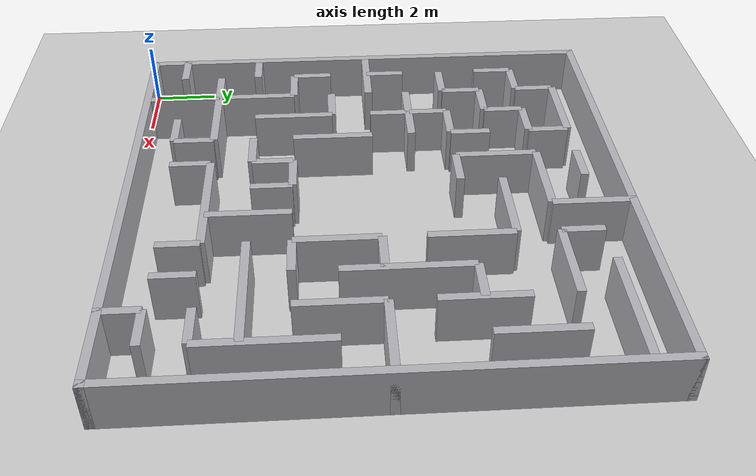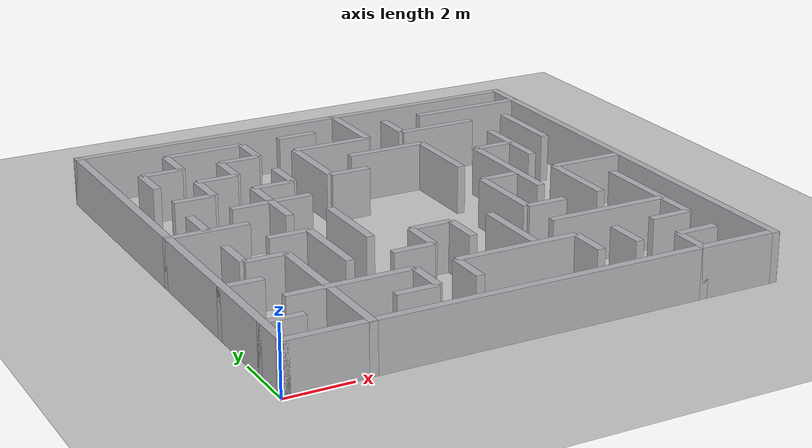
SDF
<?xml version="1.0" ?>
<sdf version="1.9">
  <world name="maze">

    <plugin filename="gz-sim-physics-system" name="gz::sim::systems::Physics">
    </plugin>
    <plugin filename="gz-sim-user-commands-system" name="gz::sim::systems::UserCommands">
    </plugin>
    <plugin filename="gz-sim-scene-broadcaster-system" name="gz::sim::systems::SceneBroadcaster">
    </plugin>
    <plugin filename="gz-sim-sensors-system" name="gz::sim::systems::Sensors">
      <render_engine>ogre2</render_engine>
    </plugin>
    <plugin filename="gz-sim-imu-system" name="gz::sim::systems::Imu">
    </plugin>

    <light type="directional" name="sun">
      <cast_shadows>true</cast_shadows>
      <pose>0 0 10 0 0 0</pose>
      <diffuse>0.8 0.8 0.8 1</diffuse>
      <specular>0.2 0.2 0.2 1</specular>
      <attenuation>
        <range>1000</range>
        <constant>0.9</constant>
        <linear>0.01</linear>
        <quadratic>0.001</quadratic>
      </attenuation>
      <direction>-0.5 0.1 -0.9</direction>
    </light>

    <model name="ground_plane">
      <static>true</static>
      <link name="link">
        <collision name="collision">
          <geometry>
            <plane>
              <normal>0 0 1</normal>
            </plane>
          </geometry>
        </collision>
        <visual name="visual">
          <geometry>
            <plane>
              <normal>0 0 1</normal>
              <size>20 20</size>
            </plane>
          </geometry>
          <material>
            <ambient>0.8 0.8 0.8 1</ambient>
            <diffuse>0.8 0.8 0.8 1</diffuse>
            <specular>0.8 0.8 0.8 1</specular>
          </material>
        </visual>
      </link>
    </model>

    <!-- MAZE WALLS                                                   -->
    <!-- 15 x 15 m closed square maze, generated on a 12x12 cell grid -->
    <!-- (1.25 m pitch). Wall thickness 0.25 m, wall height 1.5 m.    -->
    <!-- Corridor widths: 1.0 m for single-cell passages, up to       -->
    <!-- ~2.25 m for merged passages. Fully enclosed, no entrance -    -->
    <!-- the world origin (0,0) is the maze's southwest corner, so    -->
    <!-- the whole maze spans x: 0..15, y: 0..15.                     -->
    <!-- A 3 x 3 m opening is carved at the exact center (x: 6..9,    -->
    <!-- y: 6..9) as the robot spawn area, with no walls touching it. -->
    <!-- Spawn the robot at (7.5, 7.5, z) facing up (+y) to start     -->
    <!-- centered in that open square.                                -->
    <model name="maze_walls">
      <static>true</static>
      <link name="walls_link">
      <collision name="wall_0_collision">
        <pose>7.5000 0.1250 0.750 0 0 0</pose>
        <geometry>
          <box>
            <size>15.0000 0.2500 1.5</size>
          </box>
        </geometry>
      </collision>
      <visual name="wall_0_visual">
        <pose>7.5000 0.1250 0.750 0 0 0</pose>
        <geometry>
          <box>
            <size>15.0000 0.2500 1.5</size>
          </box>
        </geometry>
        <material>
          <ambient>0.7 0.7 0.72 1</ambient>
          <diffuse>0.7 0.7 0.72 1</diffuse>
          <specular>0.3 0.3 0.3 1</specular>
        </material>
      </visual>
      <collision name="wall_1_collision">
        <pose>7.5000 14.8750 0.750 0 0 0</pose>
        <geometry>
          <box>
            <size>15.0000 0.2500 1.5</size>
          </box>
        </geometry>
      </collision>
      <visual name="wall_1_visual">
        <pose>7.5000 14.8750 0.750 0 0 0</pose>
        <geometry>
          <box>
            <size>15.0000 0.2500 1.5</size>
          </box>
        </geometry>
        <material>
          <ambient>0.7 0.7 0.72 1</ambient>
          <diffuse>0.7 0.7 0.72 1</diffuse>
          <specular>0.3 0.3 0.3 1</specular>
        </material>
      </visual>
      <collision name="wall_2_collision">
        <pose>0.1250 7.5000 0.750 0 0 0</pose>
        <geometry>
          <box>
            <size>0.2500 15.0000 1.5</size>
          </box>
        </geometry>
      </collision>
      <visual name="wall_2_visual">
        <pose>0.1250 7.5000 0.750 0 0 0</pose>
        <geometry>
          <box>
            <size>0.2500 15.0000 1.5</size>
          </box>
        </geometry>
        <material>
          <ambient>0.7 0.7 0.72 1</ambient>
          <diffuse>0.7 0.7 0.72 1</diffuse>
          <specular>0.3 0.3 0.3 1</specular>
        </material>
      </visual>
      <collision name="wall_3_collision">
        <pose>14.8750 7.5000 0.750 0 0 0</pose>
        <geometry>
          <box>
            <size>0.2500 15.0000 1.5</size>
          </box>
        </geometry>
      </collision>
      <visual name="wall_3_visual">
        <pose>14.8750 7.5000 0.750 0 0 0</pose>
        <geometry>
          <box>
            <size>0.2500 15.0000 1.5</size>
          </box>
        </geometry>
        <material>
          <ambient>0.7 0.7 0.72 1</ambient>
          <diffuse>0.7 0.7 0.72 1</diffuse>
          <specular>0.3 0.3 0.3 1</specular>
        </material>
      </visual>
      <collision name="wall_4_collision">
        <pose>1.2500 5.6250 0.750 0 0 0</pose>
        <geometry>
          <box>
            <size>0.2500 1.2500 1.5</size>
          </box>
        </geometry>
      </collision>
      <visual name="wall_4_visual">
        <pose>1.2500 5.6250 0.750 0 0 0</pose>
        <geometry>
          <box>
            <size>0.2500 1.2500 1.5</size>
          </box>
        </geometry>
        <material>
          <ambient>0.7 0.7 0.72 1</ambient>
          <diffuse>0.7 0.7 0.72 1</diffuse>
          <specular>0.3 0.3 0.3 1</specular>
        </material>
      </visual>
      <collision name="wall_5_collision">
        <pose>1.2500 8.1250 0.750 0 0 0</pose>
        <geometry>
          <box>
            <size>0.2500 1.2500 1.5</size>
          </box>
        </geometry>
      </collision>
      <visual name="wall_5_visual">
        <pose>1.2500 8.1250 0.750 0 0 0</pose>
        <geometry>
          <box>
            <size>0.2500 1.2500 1.5</size>
          </box>
        </geometry>
        <material>
          <ambient>0.7 0.7 0.72 1</ambient>
          <diffuse>0.7 0.7 0.72 1</diffuse>
          <specular>0.3 0.3 0.3 1</specular>
        </material>
      </visual>
      <collision name="wall_6_collision">
        <pose>1.2500 11.8750 0.750 0 0 0</pose>
        <geometry>
          <box>
            <size>0.2500 1.2500 1.5</size>
          </box>
        </geometry>
      </collision>
      <visual name="wall_6_visual">
        <pose>1.2500 11.8750 0.750 0 0 0</pose>
        <geometry>
          <box>
            <size>0.2500 1.2500 1.5</size>
          </box>
        </geometry>
        <material>
          <ambient>0.7 0.7 0.72 1</ambient>
          <diffuse>0.7 0.7 0.72 1</diffuse>
          <specular>0.3 0.3 0.3 1</specular>
        </material>
      </visual>
      <collision name="wall_7_collision">
        <pose>2.5000 2.5000 0.750 0 0 0</pose>
        <geometry>
          <box>
            <size>0.2500 5.0000 1.5</size>
          </box>
        </geometry>
      </collision>
      <visual name="wall_7_visual">
        <pose>2.5000 2.5000 0.750 0 0 0</pose>
        <geometry>
          <box>
            <size>0.2500 5.0000 1.5</size>
          </box>
        </geometry>
        <material>
          <ambient>0.7 0.7 0.72 1</ambient>
          <diffuse>0.7 0.7 0.72 1</diffuse>
          <specular>0.3 0.3 0.3 1</specular>
        </material>
      </visual>
      <collision name="wall_8_collision">
        <pose>2.5000 10.6250 0.750 0 0 0</pose>
        <geometry>
          <box>
            <size>0.2500 1.2500 1.5</size>
          </box>
        </geometry>
      </collision>
      <visual name="wall_8_visual">
        <pose>2.5000 10.6250 0.750 0 0 0</pose>
        <geometry>
          <box>
            <size>0.2500 1.2500 1.5</size>
          </box>
        </geometry>
        <material>
          <ambient>0.7 0.7 0.72 1</ambient>
          <diffuse>0.7 0.7 0.72 1</diffuse>
          <specular>0.3 0.3 0.3 1</specular>
        </material>
      </visual>
      <collision name="wall_9_collision">
        <pose>2.5000 13.1250 0.750 0 0 0</pose>
        <geometry>
          <box>
            <size>0.2500 1.2500 1.5</size>
          </box>
        </geometry>
      </collision>
      <visual name="wall_9_visual">
        <pose>2.5000 13.1250 0.750 0 0 0</pose>
        <geometry>
          <box>
            <size>0.2500 1.2500 1.5</size>
          </box>
        </geometry>
        <material>
          <ambient>0.7 0.7 0.72 1</ambient>
          <diffuse>0.7 0.7 0.72 1</diffuse>
          <specular>0.3 0.3 0.3 1</specular>
        </material>
      </visual>
      <collision name="wall_10_collision">
        <pose>3.7500 5.0000 0.750 0 0 0</pose>
        <geometry>
          <box>
            <size>0.2500 2.5000 1.5</size>
          </box>
        </geometry>
      </collision>
      <visual name="wall_10_visual">
        <pose>3.7500 5.0000 0.750 0 0 0</pose>
        <geometry>
          <box>
            <size>0.2500 2.5000 1.5</size>
          </box>
        </geometry>
        <material>
          <ambient>0.7 0.7 0.72 1</ambient>
          <diffuse>0.7 0.7 0.72 1</diffuse>
          <specular>0.3 0.3 0.3 1</specular>
        </material>
      </visual>
      <collision name="wall_11_collision">
        <pose>3.7500 8.7500 0.750 0 0 0</pose>
        <geometry>
          <box>
            <size>0.2500 2.5000 1.5</size>
          </box>
        </geometry>
      </collision>
      <visual name="wall_11_visual">
        <pose>3.7500 8.7500 0.750 0 0 0</pose>
        <geometry>
          <box>
            <size>0.2500 2.5000 1.5</size>
          </box>
        </geometry>
        <material>
          <ambient>0.7 0.7 0.72 1</ambient>
          <diffuse>0.7 0.7 0.72 1</diffuse>
          <specular>0.3 0.3 0.3 1</specular>
        </material>
      </visual>
      <collision name="wall_12_collision">
        <pose>3.7500 11.8750 0.750 0 0 0</pose>
        <geometry>
          <box>
            <size>0.2500 1.2500 1.5</size>
          </box>
        </geometry>
      </collision>
      <visual name="wall_12_visual">
        <pose>3.7500 11.8750 0.750 0 0 0</pose>
        <geometry>
          <box>
            <size>0.2500 1.2500 1.5</size>
          </box>
        </geometry>
        <material>
          <ambient>0.7 0.7 0.72 1</ambient>
          <diffuse>0.7 0.7 0.72 1</diffuse>
          <specular>0.3 0.3 0.3 1</specular>
        </material>
      </visual>
      <collision name="wall_13_collision">
        <pose>5.0000 1.8750 0.750 0 0 0</pose>
        <geometry>
          <box>
            <size>0.2500 1.2500 1.5</size>
          </box>
        </geometry>
      </collision>
      <visual name="wall_13_visual">
        <pose>5.0000 1.8750 0.750 0 0 0</pose>
        <geometry>
          <box>
            <size>0.2500 1.2500 1.5</size>
          </box>
        </geometry>
        <material>
          <ambient>0.7 0.7 0.72 1</ambient>
          <diffuse>0.7 0.7 0.72 1</diffuse>
          <specular>0.3 0.3 0.3 1</specular>
        </material>
      </visual>
      <collision name="wall_14_collision">
        <pose>5.0000 6.2500 0.750 0 0 0</pose>
        <geometry>
          <box>
            <size>0.2500 2.5000 1.5</size>
          </box>
        </geometry>
      </collision>
      <visual name="wall_14_visual">
        <pose>5.0000 6.2500 0.750 0 0 0</pose>
        <geometry>
          <box>
            <size>0.2500 2.5000 1.5</size>
          </box>
        </geometry>
        <material>
          <ambient>0.7 0.7 0.72 1</ambient>
          <diffuse>0.7 0.7 0.72 1</diffuse>
          <specular>0.3 0.3 0.3 1</specular>
        </material>
      </visual>
      <collision name="wall_15_collision">
        <pose>5.0000 10.6250 0.750 0 0 0</pose>
        <geometry>
          <box>
            <size>0.2500 1.2500 1.5</size>
          </box>
        </geometry>
      </collision>
      <visual name="wall_15_visual">
        <pose>5.0000 10.6250 0.750 0 0 0</pose>
        <geometry>
          <box>
            <size>0.2500 1.2500 1.5</size>
          </box>
        </geometry>
        <material>
          <ambient>0.7 0.7 0.72 1</ambient>
          <diffuse>0.7 0.7 0.72 1</diffuse>
          <specular>0.3 0.3 0.3 1</specular>
        </material>
      </visual>
      <collision name="wall_16_collision">
        <pose>5.0000 13.1250 0.750 0 0 0</pose>
        <geometry>
          <box>
            <size>0.2500 1.2500 1.5</size>
          </box>
        </geometry>
      </collision>
      <visual name="wall_16_visual">
        <pose>5.0000 13.1250 0.750 0 0 0</pose>
        <geometry>
          <box>
            <size>0.2500 1.2500 1.5</size>
          </box>
        </geometry>
        <material>
          <ambient>0.7 0.7 0.72 1</ambient>
          <diffuse>0.7 0.7 0.72 1</diffuse>
          <specular>0.3 0.3 0.3 1</specular>
        </material>
      </visual>
      <collision name="wall_17_collision">
        <pose>6.2500 1.8750 0.750 0 0 0</pose>
        <geometry>
          <box>
            <size>0.2500 1.2500 1.5</size>
          </box>
        </geometry>
      </collision>
      <visual name="wall_17_visual">
        <pose>6.2500 1.8750 0.750 0 0 0</pose>
        <geometry>
          <box>
            <size>0.2500 1.2500 1.5</size>
          </box>
        </geometry>
        <material>
          <ambient>0.7 0.7 0.72 1</ambient>
          <diffuse>0.7 0.7 0.72 1</diffuse>
          <specular>0.3 0.3 0.3 1</specular>
        </material>
      </visual>
      <collision name="wall_18_collision">
        <pose>6.2500 4.3750 0.750 0 0 0</pose>
        <geometry>
          <box>
            <size>0.2500 1.2500 1.5</size>
          </box>
        </geometry>
      </collision>
      <visual name="wall_18_visual">
        <pose>6.2500 4.3750 0.750 0 0 0</pose>
        <geometry>
          <box>
            <size>0.2500 1.2500 1.5</size>
          </box>
        </geometry>
        <material>
          <ambient>0.7 0.7 0.72 1</ambient>
          <diffuse>0.7 0.7 0.72 1</diffuse>
          <specular>0.3 0.3 0.3 1</specular>
        </material>
      </visual>
      <collision name="wall_19_collision">
        <pose>6.2500 11.2500 0.750 0 0 0</pose>
        <geometry>
          <box>
            <size>0.2500 2.5000 1.5</size>
          </box>
        </geometry>
      </collision>
      <visual name="wall_19_visual">
        <pose>6.2500 11.2500 0.750 0 0 0</pose>
        <geometry>
          <box>
            <size>0.2500 2.5000 1.5</size>
          </box>
        </geometry>
        <material>
          <ambient>0.7 0.7 0.72 1</ambient>
          <diffuse>0.7 0.7 0.72 1</diffuse>
          <specular>0.3 0.3 0.3 1</specular>
        </material>
      </visual>
      <collision name="wall_20_collision">
        <pose>7.5000 4.3750 0.750 0 0 0</pose>
        <geometry>
          <box>
            <size>0.2500 1.2500 1.5</size>
          </box>
        </geometry>
      </collision>
      <visual name="wall_20_visual">
        <pose>7.5000 4.3750 0.750 0 0 0</pose>
        <geometry>
          <box>
            <size>0.2500 1.2500 1.5</size>
          </box>
        </geometry>
        <material>
          <ambient>0.7 0.7 0.72 1</ambient>
          <diffuse>0.7 0.7 0.72 1</diffuse>
          <specular>0.3 0.3 0.3 1</specular>
        </material>
      </visual>
      <collision name="wall_21_collision">
        <pose>8.7500 3.7500 0.750 0 0 0</pose>
        <geometry>
          <box>
            <size>0.2500 2.5000 1.5</size>
          </box>
        </geometry>
      </collision>
      <visual name="wall_21_visual">
        <pose>8.7500 3.7500 0.750 0 0 0</pose>
        <geometry>
          <box>
            <size>0.2500 2.5000 1.5</size>
          </box>
        </geometry>
        <material>
          <ambient>0.7 0.7 0.72 1</ambient>
          <diffuse>0.7 0.7 0.72 1</diffuse>
          <specular>0.3 0.3 0.3 1</specular>
        </material>
      </visual>
      <collision name="wall_22_collision">
        <pose>8.7500 13.7500 0.750 0 0 0</pose>
        <geometry>
          <box>
            <size>0.2500 2.5000 1.5</size>
          </box>
        </geometry>
      </collision>
      <visual name="wall_22_visual">
        <pose>8.7500 13.7500 0.750 0 0 0</pose>
        <geometry>
          <box>
            <size>0.2500 2.5000 1.5</size>
          </box>
        </geometry>
        <material>
          <ambient>0.7 0.7 0.72 1</ambient>
          <diffuse>0.7 0.7 0.72 1</diffuse>
          <specular>0.3 0.3 0.3 1</specular>
        </material>
      </visual>
      <collision name="wall_23_collision">
        <pose>10.0000 1.8750 0.750 0 0 0</pose>
        <geometry>
          <box>
            <size>0.2500 1.2500 1.5</size>
          </box>
        </geometry>
      </collision>
      <visual name="wall_23_visual">
        <pose>10.0000 1.8750 0.750 0 0 0</pose>
        <geometry>
          <box>
            <size>0.2500 1.2500 1.5</size>
          </box>
        </geometry>
        <material>
          <ambient>0.7 0.7 0.72 1</ambient>
          <diffuse>0.7 0.7 0.72 1</diffuse>
          <specular>0.3 0.3 0.3 1</specular>
        </material>
      </visual>
      <collision name="wall_24_collision">
        <pose>10.0000 6.2500 0.750 0 0 0</pose>
        <geometry>
          <box>
            <size>0.2500 2.5000 1.5</size>
          </box>
        </geometry>
      </collision>
      <visual name="wall_24_visual">
        <pose>10.0000 6.2500 0.750 0 0 0</pose>
        <geometry>
          <box>
            <size>0.2500 2.5000 1.5</size>
          </box>
        </geometry>
        <material>
          <ambient>0.7 0.7 0.72 1</ambient>
          <diffuse>0.7 0.7 0.72 1</diffuse>
          <specular>0.3 0.3 0.3 1</specular>
        </material>
      </visual>
      <collision name="wall_25_collision">
        <pose>10.0000 10.0000 0.750 0 0 0</pose>
        <geometry>
          <box>
            <size>0.2500 2.5000 1.5</size>
          </box>
        </geometry>
      </collision>
      <visual name="wall_25_visual">
        <pose>10.0000 10.0000 0.750 0 0 0</pose>
        <geometry>
          <box>
            <size>0.2500 2.5000 1.5</size>
          </box>
        </geometry>
        <material>
          <ambient>0.7 0.7 0.72 1</ambient>
          <diffuse>0.7 0.7 0.72 1</diffuse>
          <specular>0.3 0.3 0.3 1</specular>
        </material>
      </visual>
      <collision name="wall_26_collision">
        <pose>10.0000 13.1250 0.750 0 0 0</pose>
        <geometry>
          <box>
            <size>0.2500 1.2500 1.5</size>
          </box>
        </geometry>
      </collision>
      <visual name="wall_26_visual">
        <pose>10.0000 13.1250 0.750 0 0 0</pose>
        <geometry>
          <box>
            <size>0.2500 1.2500 1.5</size>
          </box>
        </geometry>
        <material>
          <ambient>0.7 0.7 0.72 1</ambient>
          <diffuse>0.7 0.7 0.72 1</diffuse>
          <specular>0.3 0.3 0.3 1</specular>
        </material>
      </visual>
      <collision name="wall_27_collision">
        <pose>11.2500 1.8750 0.750 0 0 0</pose>
        <geometry>
          <box>
            <size>0.2500 1.2500 1.5</size>
          </box>
        </geometry>
      </collision>
      <visual name="wall_27_visual">
        <pose>11.2500 1.8750 0.750 0 0 0</pose>
        <geometry>
          <box>
            <size>0.2500 1.2500 1.5</size>
          </box>
        </geometry>
        <material>
          <ambient>0.7 0.7 0.72 1</ambient>
          <diffuse>0.7 0.7 0.72 1</diffuse>
          <specular>0.3 0.3 0.3 1</specular>
        </material>
      </visual>
      <collision name="wall_28_collision">
        <pose>11.2500 8.1250 0.750 0 0 0</pose>
        <geometry>
          <box>
            <size>0.2500 3.7500 1.5</size>
          </box>
        </geometry>
      </collision>
      <visual name="wall_28_visual">
        <pose>11.2500 8.1250 0.750 0 0 0</pose>
        <geometry>
          <box>
            <size>0.2500 3.7500 1.5</size>
          </box>
        </geometry>
        <material>
          <ambient>0.7 0.7 0.72 1</ambient>
          <diffuse>0.7 0.7 0.72 1</diffuse>
          <specular>0.3 0.3 0.3 1</specular>
        </material>
      </visual>
      <collision name="wall_29_collision">
        <pose>12.5000 0.6250 0.750 0 0 0</pose>
        <geometry>
          <box>
            <size>0.2500 1.2500 1.5</size>
          </box>
        </geometry>
      </collision>
      <visual name="wall_29_visual">
        <pose>12.5000 0.6250 0.750 0 0 0</pose>
        <geometry>
          <box>
            <size>0.2500 1.2500 1.5</size>
          </box>
        </geometry>
        <material>
          <ambient>0.7 0.7 0.72 1</ambient>
          <diffuse>0.7 0.7 0.72 1</diffuse>
          <specular>0.3 0.3 0.3 1</specular>
        </material>
      </visual>
      <collision name="wall_30_collision">
        <pose>12.5000 6.2500 0.750 0 0 0</pose>
        <geometry>
          <box>
            <size>0.2500 2.5000 1.5</size>
          </box>
        </geometry>
      </collision>
      <visual name="wall_30_visual">
        <pose>12.5000 6.2500 0.750 0 0 0</pose>
        <geometry>
          <box>
            <size>0.2500 2.5000 1.5</size>
          </box>
        </geometry>
        <material>
          <ambient>0.7 0.7 0.72 1</ambient>
          <diffuse>0.7 0.7 0.72 1</diffuse>
          <specular>0.3 0.3 0.3 1</specular>
        </material>
      </visual>
      <collision name="wall_31_collision">
        <pose>12.5000 10.0000 0.750 0 0 0</pose>
        <geometry>
          <box>
            <size>0.2500 2.5000 1.5</size>
          </box>
        </geometry>
      </collision>
      <visual name="wall_31_visual">
        <pose>12.5000 10.0000 0.750 0 0 0</pose>
        <geometry>
          <box>
            <size>0.2500 2.5000 1.5</size>
          </box>
        </geometry>
        <material>
          <ambient>0.7 0.7 0.72 1</ambient>
          <diffuse>0.7 0.7 0.72 1</diffuse>
          <specular>0.3 0.3 0.3 1</specular>
        </material>
      </visual>
      <collision name="wall_32_collision">
        <pose>13.7500 4.3750 0.750 0 0 0</pose>
        <geometry>
          <box>
            <size>0.2500 3.7500 1.5</size>
          </box>
        </geometry>
      </collision>
      <visual name="wall_32_visual">
        <pose>13.7500 4.3750 0.750 0 0 0</pose>
        <geometry>
          <box>
            <size>0.2500 3.7500 1.5</size>
          </box>
        </geometry>
        <material>
          <ambient>0.7 0.7 0.72 1</ambient>
          <diffuse>0.7 0.7 0.72 1</diffuse>
          <specular>0.3 0.3 0.3 1</specular>
        </material>
      </visual>
      <collision name="wall_33_collision">
        <pose>13.7500 11.2500 0.750 0 0 0</pose>
        <geometry>
          <box>
            <size>0.2500 2.5000 1.5</size>
          </box>
        </geometry>
      </collision>
      <visual name="wall_33_visual">
        <pose>13.7500 11.2500 0.750 0 0 0</pose>
        <geometry>
          <box>
            <size>0.2500 2.5000 1.5</size>
          </box>
        </geometry>
        <material>
          <ambient>0.7 0.7 0.72 1</ambient>
          <diffuse>0.7 0.7 0.72 1</diffuse>
          <specular>0.3 0.3 0.3 1</specular>
        </material>
      </visual>
      <collision name="wall_34_collision">
        <pose>0.6250 1.2500 0.750 0 0 0</pose>
        <geometry>
          <box>
            <size>1.2500 0.2500 1.5</size>
          </box>
        </geometry>
      </collision>
      <visual name="wall_34_visual">
        <pose>0.6250 1.2500 0.750 0 0 0</pose>
        <geometry>
          <box>
            <size>1.2500 0.2500 1.5</size>
          </box>
        </geometry>
        <material>
          <ambient>0.7 0.7 0.72 1</ambient>
          <diffuse>0.7 0.7 0.72 1</diffuse>
          <specular>0.3 0.3 0.3 1</specular>
        </material>
      </visual>
      <collision name="wall_35_collision">
        <pose>4.3750 1.2500 0.750 0 0 0</pose>
        <geometry>
          <box>
            <size>1.2500 0.2500 1.5</size>
          </box>
        </geometry>
      </collision>
      <visual name="wall_35_visual">
        <pose>4.3750 1.2500 0.750 0 0 0</pose>
        <geometry>
          <box>
            <size>1.2500 0.2500 1.5</size>
          </box>
        </geometry>
        <material>
          <ambient>0.7 0.7 0.72 1</ambient>
          <diffuse>0.7 0.7 0.72 1</diffuse>
          <specular>0.3 0.3 0.3 1</specular>
        </material>
      </visual>
      <collision name="wall_36_collision">
        <pose>13.1250 1.2500 0.750 0 0 0</pose>
        <geometry>
          <box>
            <size>1.2500 0.2500 1.5</size>
          </box>
        </geometry>
      </collision>
      <visual name="wall_36_visual">
        <pose>13.1250 1.2500 0.750 0 0 0</pose>
        <geometry>
          <box>
            <size>1.2500 0.2500 1.5</size>
          </box>
        </geometry>
        <material>
          <ambient>0.7 0.7 0.72 1</ambient>
          <diffuse>0.7 0.7 0.72 1</diffuse>
          <specular>0.3 0.3 0.3 1</specular>
        </material>
      </visual>
      <collision name="wall_37_collision">
        <pose>0.6250 3.7500 0.750 0 0 0</pose>
        <geometry>
          <box>
            <size>1.2500 0.2500 1.5</size>
          </box>
        </geometry>
      </collision>
      <visual name="wall_37_visual">
        <pose>0.6250 3.7500 0.750 0 0 0</pose>
        <geometry>
          <box>
            <size>1.2500 0.2500 1.5</size>
          </box>
        </geometry>
        <material>
          <ambient>0.7 0.7 0.72 1</ambient>
          <diffuse>0.7 0.7 0.72 1</diffuse>
          <specular>0.3 0.3 0.3 1</specular>
        </material>
      </visual>
      <collision name="wall_38_collision">
        <pose>5.6250 3.7500 0.750 0 0 0</pose>
        <geometry>
          <box>
            <size>1.2500 0.2500 1.5</size>
          </box>
        </geometry>
      </collision>
      <visual name="wall_38_visual">
        <pose>5.6250 3.7500 0.750 0 0 0</pose>
        <geometry>
          <box>
            <size>1.2500 0.2500 1.5</size>
          </box>
        </geometry>
        <material>
          <ambient>0.7 0.7 0.72 1</ambient>
          <diffuse>0.7 0.7 0.72 1</diffuse>
          <specular>0.3 0.3 0.3 1</specular>
        </material>
      </visual>
      <collision name="wall_39_collision">
        <pose>11.8750 3.7500 0.750 0 0 0</pose>
        <geometry>
          <box>
            <size>3.7500 0.2500 1.5</size>
          </box>
        </geometry>
      </collision>
      <visual name="wall_39_visual">
        <pose>11.8750 3.7500 0.750 0 0 0</pose>
        <geometry>
          <box>
            <size>3.7500 0.2500 1.5</size>
          </box>
        </geometry>
        <material>
          <ambient>0.7 0.7 0.72 1</ambient>
          <diffuse>0.7 0.7 0.72 1</diffuse>
          <specular>0.3 0.3 0.3 1</specular>
        </material>
      </visual>
      <collision name="wall_40_collision">
        <pose>1.2500 7.5000 0.750 0 0 0</pose>
        <geometry>
          <box>
            <size>2.5000 0.2500 1.5</size>
          </box>
        </geometry>
      </collision>
      <visual name="wall_40_visual">
        <pose>1.2500 7.5000 0.750 0 0 0</pose>
        <geometry>
          <box>
            <size>2.5000 0.2500 1.5</size>
          </box>
        </geometry>
        <material>
          <ambient>0.7 0.7 0.72 1</ambient>
          <diffuse>0.7 0.7 0.72 1</diffuse>
          <specular>0.3 0.3 0.3 1</specular>
        </material>
      </visual>
      <collision name="wall_41_collision">
        <pose>10.6250 7.5000 0.750 0 0 0</pose>
        <geometry>
          <box>
            <size>1.2500 0.2500 1.5</size>
          </box>
        </geometry>
      </collision>
      <visual name="wall_41_visual">
        <pose>10.6250 7.5000 0.750 0 0 0</pose>
        <geometry>
          <box>
            <size>1.2500 0.2500 1.5</size>
          </box>
        </geometry>
        <material>
          <ambient>0.7 0.7 0.72 1</ambient>
          <diffuse>0.7 0.7 0.72 1</diffuse>
          <specular>0.3 0.3 0.3 1</specular>
        </material>
      </visual>
      <collision name="wall_42_collision">
        <pose>13.7500 7.5000 0.750 0 0 0</pose>
        <geometry>
          <box>
            <size>2.5000 0.2500 1.5</size>
          </box>
        </geometry>
      </collision>
      <visual name="wall_42_visual">
        <pose>13.7500 7.5000 0.750 0 0 0</pose>
        <geometry>
          <box>
            <size>2.5000 0.2500 1.5</size>
          </box>
        </geometry>
        <material>
          <ambient>0.7 0.7 0.72 1</ambient>
          <diffuse>0.7 0.7 0.72 1</diffuse>
          <specular>0.3 0.3 0.3 1</specular>
        </material>
      </visual>
      <collision name="wall_43_collision">
        <pose>3.1250 2.5000 0.750 0 0 0</pose>
        <geometry>
          <box>
            <size>3.7500 0.2500 1.5</size>
          </box>
        </geometry>
      </collision>
      <visual name="wall_43_visual">
        <pose>3.1250 2.5000 0.750 0 0 0</pose>
        <geometry>
          <box>
            <size>3.7500 0.2500 1.5</size>
          </box>
        </geometry>
        <material>
          <ambient>0.7 0.7 0.72 1</ambient>
          <diffuse>0.7 0.7 0.72 1</diffuse>
          <specular>0.3 0.3 0.3 1</specular>
        </material>
      </visual>
      <collision name="wall_44_collision">
        <pose>8.1250 2.5000 0.750 0 0 0</pose>
        <geometry>
          <box>
            <size>3.7500 0.2500 1.5</size>
          </box>
        </geometry>
      </collision>
      <visual name="wall_44_visual">
        <pose>8.1250 2.5000 0.750 0 0 0</pose>
        <geometry>
          <box>
            <size>3.7500 0.2500 1.5</size>
          </box>
        </geometry>
        <material>
          <ambient>0.7 0.7 0.72 1</ambient>
          <diffuse>0.7 0.7 0.72 1</diffuse>
          <specular>0.3 0.3 0.3 1</specular>
        </material>
      </visual>
      <collision name="wall_45_collision">
        <pose>13.1250 2.5000 0.750 0 0 0</pose>
        <geometry>
          <box>
            <size>1.2500 0.2500 1.5</size>
          </box>
        </geometry>
      </collision>
      <visual name="wall_45_visual">
        <pose>13.1250 2.5000 0.750 0 0 0</pose>
        <geometry>
          <box>
            <size>1.2500 0.2500 1.5</size>
          </box>
        </geometry>
        <material>
          <ambient>0.7 0.7 0.72 1</ambient>
          <diffuse>0.7 0.7 0.72 1</diffuse>
          <specular>0.3 0.3 0.3 1</specular>
        </material>
      </visual>
      <collision name="wall_46_collision">
        <pose>1.8750 5.0000 0.750 0 0 0</pose>
        <geometry>
          <box>
            <size>1.2500 0.2500 1.5</size>
          </box>
        </geometry>
      </collision>
      <visual name="wall_46_visual">
        <pose>1.8750 5.0000 0.750 0 0 0</pose>
        <geometry>
          <box>
            <size>1.2500 0.2500 1.5</size>
          </box>
        </geometry>
        <material>
          <ambient>0.7 0.7 0.72 1</ambient>
          <diffuse>0.7 0.7 0.72 1</diffuse>
          <specular>0.3 0.3 0.3 1</specular>
        </material>
      </visual>
      <collision name="wall_47_collision">
        <pose>6.8750 5.0000 0.750 0 0 0</pose>
        <geometry>
          <box>
            <size>1.2500 0.2500 1.5</size>
          </box>
        </geometry>
      </collision>
      <visual name="wall_47_visual">
        <pose>6.8750 5.0000 0.750 0 0 0</pose>
        <geometry>
          <box>
            <size>1.2500 0.2500 1.5</size>
          </box>
        </geometry>
        <material>
          <ambient>0.7 0.7 0.72 1</ambient>
          <diffuse>0.7 0.7 0.72 1</diffuse>
          <specular>0.3 0.3 0.3 1</specular>
        </material>
      </visual>
      <collision name="wall_48_collision">
        <pose>10.6250 5.0000 0.750 0 0 0</pose>
        <geometry>
          <box>
            <size>1.2500 0.2500 1.5</size>
          </box>
        </geometry>
      </collision>
      <visual name="wall_48_visual">
        <pose>10.6250 5.0000 0.750 0 0 0</pose>
        <geometry>
          <box>
            <size>1.2500 0.2500 1.5</size>
          </box>
        </geometry>
        <material>
          <ambient>0.7 0.7 0.72 1</ambient>
          <diffuse>0.7 0.7 0.72 1</diffuse>
          <specular>0.3 0.3 0.3 1</specular>
        </material>
      </visual>
      <collision name="wall_49_collision">
        <pose>1.8750 10.0000 0.750 0 0 0</pose>
        <geometry>
          <box>
            <size>1.2500 0.2500 1.5</size>
          </box>
        </geometry>
      </collision>
      <visual name="wall_49_visual">
        <pose>1.8750 10.0000 0.750 0 0 0</pose>
        <geometry>
          <box>
            <size>1.2500 0.2500 1.5</size>
          </box>
        </geometry>
        <material>
          <ambient>0.7 0.7 0.72 1</ambient>
          <diffuse>0.7 0.7 0.72 1</diffuse>
          <specular>0.3 0.3 0.3 1</specular>
        </material>
      </visual>
      <collision name="wall_50_collision">
        <pose>4.3750 10.0000 0.750 0 0 0</pose>
        <geometry>
          <box>
            <size>1.2500 0.2500 1.5</size>
          </box>
        </geometry>
      </collision>
      <visual name="wall_50_visual">
        <pose>4.3750 10.0000 0.750 0 0 0</pose>
        <geometry>
          <box>
            <size>1.2500 0.2500 1.5</size>
          </box>
        </geometry>
        <material>
          <ambient>0.7 0.7 0.72 1</ambient>
          <diffuse>0.7 0.7 0.72 1</diffuse>
          <specular>0.3 0.3 0.3 1</specular>
        </material>
      </visual>
      <collision name="wall_51_collision">
        <pose>6.8750 10.0000 0.750 0 0 0</pose>
        <geometry>
          <box>
            <size>1.2500 0.2500 1.5</size>
          </box>
        </geometry>
      </collision>
      <visual name="wall_51_visual">
        <pose>6.8750 10.0000 0.750 0 0 0</pose>
        <geometry>
          <box>
            <size>1.2500 0.2500 1.5</size>
          </box>
        </geometry>
        <material>
          <ambient>0.7 0.7 0.72 1</ambient>
          <diffuse>0.7 0.7 0.72 1</diffuse>
          <specular>0.3 0.3 0.3 1</specular>
        </material>
      </visual>
      <collision name="wall_52_collision">
        <pose>11.8750 10.0000 0.750 0 0 0</pose>
        <geometry>
          <box>
            <size>1.2500 0.2500 1.5</size>
          </box>
        </geometry>
      </collision>
      <visual name="wall_52_visual">
        <pose>11.8750 10.0000 0.750 0 0 0</pose>
        <geometry>
          <box>
            <size>1.2500 0.2500 1.5</size>
          </box>
        </geometry>
        <material>
          <ambient>0.7 0.7 0.72 1</ambient>
          <diffuse>0.7 0.7 0.72 1</diffuse>
          <specular>0.3 0.3 0.3 1</specular>
        </material>
      </visual>
      <collision name="wall_53_collision">
        <pose>1.8750 12.5000 0.750 0 0 0</pose>
        <geometry>
          <box>
            <size>1.2500 0.2500 1.5</size>
          </box>
        </geometry>
      </collision>
      <visual name="wall_53_visual">
        <pose>1.8750 12.5000 0.750 0 0 0</pose>
        <geometry>
          <box>
            <size>1.2500 0.2500 1.5</size>
          </box>
        </geometry>
        <material>
          <ambient>0.7 0.7 0.72 1</ambient>
          <diffuse>0.7 0.7 0.72 1</diffuse>
          <specular>0.3 0.3 0.3 1</specular>
        </material>
      </visual>
      <collision name="wall_54_collision">
        <pose>4.3750 12.5000 0.750 0 0 0</pose>
        <geometry>
          <box>
            <size>1.2500 0.2500 1.5</size>
          </box>
        </geometry>
      </collision>
      <visual name="wall_54_visual">
        <pose>4.3750 12.5000 0.750 0 0 0</pose>
        <geometry>
          <box>
            <size>1.2500 0.2500 1.5</size>
          </box>
        </geometry>
        <material>
          <ambient>0.7 0.7 0.72 1</ambient>
          <diffuse>0.7 0.7 0.72 1</diffuse>
          <specular>0.3 0.3 0.3 1</specular>
        </material>
      </visual>
      <collision name="wall_55_collision">
        <pose>7.5000 12.5000 0.750 0 0 0</pose>
        <geometry>
          <box>
            <size>2.5000 0.2500 1.5</size>
          </box>
        </geometry>
      </collision>
      <visual name="wall_55_visual">
        <pose>7.5000 12.5000 0.750 0 0 0</pose>
        <geometry>
          <box>
            <size>2.5000 0.2500 1.5</size>
          </box>
        </geometry>
        <material>
          <ambient>0.7 0.7 0.72 1</ambient>
          <diffuse>0.7 0.7 0.72 1</diffuse>
          <specular>0.3 0.3 0.3 1</specular>
        </material>
      </visual>
      <collision name="wall_56_collision">
        <pose>11.2500 12.5000 0.750 0 0 0</pose>
        <geometry>
          <box>
            <size>2.5000 0.2500 1.5</size>
          </box>
        </geometry>
      </collision>
      <visual name="wall_56_visual">
        <pose>11.2500 12.5000 0.750 0 0 0</pose>
        <geometry>
          <box>
            <size>2.5000 0.2500 1.5</size>
          </box>
        </geometry>
        <material>
          <ambient>0.7 0.7 0.72 1</ambient>
          <diffuse>0.7 0.7 0.72 1</diffuse>
          <specular>0.3 0.3 0.3 1</specular>
        </material>
      </visual>
      <collision name="wall_57_collision">
        <pose>3.1250 6.2500 0.750 0 0 0</pose>
        <geometry>
          <box>
            <size>1.2500 0.2500 1.5</size>
          </box>
        </geometry>
      </collision>
      <visual name="wall_57_visual">
        <pose>3.1250 6.2500 0.750 0 0 0</pose>
        <geometry>
          <box>
            <size>1.2500 0.2500 1.5</size>
          </box>
        </geometry>
        <material>
          <ambient>0.7 0.7 0.72 1</ambient>
          <diffuse>0.7 0.7 0.72 1</diffuse>
          <specular>0.3 0.3 0.3 1</specular>
        </material>
      </visual>
      <collision name="wall_58_collision">
        <pose>3.7500 8.7500 0.750 0 0 0</pose>
        <geometry>
          <box>
            <size>2.5000 0.2500 1.5</size>
          </box>
        </geometry>
      </collision>
      <visual name="wall_58_visual">
        <pose>3.7500 8.7500 0.750 0 0 0</pose>
        <geometry>
          <box>
            <size>2.5000 0.2500 1.5</size>
          </box>
        </geometry>
        <material>
          <ambient>0.7 0.7 0.72 1</ambient>
          <diffuse>0.7 0.7 0.72 1</diffuse>
          <specular>0.3 0.3 0.3 1</specular>
        </material>
      </visual>
      <collision name="wall_59_collision">
        <pose>3.1250 11.2500 0.750 0 0 0</pose>
        <geometry>
          <box>
            <size>1.2500 0.2500 1.5</size>
          </box>
        </geometry>
      </collision>
      <visual name="wall_59_visual">
        <pose>3.1250 11.2500 0.750 0 0 0</pose>
        <geometry>
          <box>
            <size>1.2500 0.2500 1.5</size>
          </box>
        </geometry>
        <material>
          <ambient>0.7 0.7 0.72 1</ambient>
          <diffuse>0.7 0.7 0.72 1</diffuse>
          <specular>0.3 0.3 0.3 1</specular>
        </material>
      </visual>
      <collision name="wall_60_collision">
        <pose>8.7500 11.2500 0.750 0 0 0</pose>
        <geometry>
          <box>
            <size>2.5000 0.2500 1.5</size>
          </box>
        </geometry>
      </collision>
      <visual name="wall_60_visual">
        <pose>8.7500 11.2500 0.750 0 0 0</pose>
        <geometry>
          <box>
            <size>2.5000 0.2500 1.5</size>
          </box>
        </geometry>
        <material>
          <ambient>0.7 0.7 0.72 1</ambient>
          <diffuse>0.7 0.7 0.72 1</diffuse>
          <specular>0.3 0.3 0.3 1</specular>
        </material>
      </visual>
      <collision name="wall_61_collision">
        <pose>3.7500 13.7500 0.750 0 0 0</pose>
        <geometry>
          <box>
            <size>2.5000 0.2500 1.5</size>
          </box>
        </geometry>
      </collision>
      <visual name="wall_61_visual">
        <pose>3.7500 13.7500 0.750 0 0 0</pose>
        <geometry>
          <box>
            <size>2.5000 0.2500 1.5</size>
          </box>
        </geometry>
        <material>
          <ambient>0.7 0.7 0.72 1</ambient>
          <diffuse>0.7 0.7 0.72 1</diffuse>
          <specular>0.3 0.3 0.3 1</specular>
        </material>
      </visual>
      <collision name="wall_62_collision">
        <pose>6.8750 13.7500 0.750 0 0 0</pose>
        <geometry>
          <box>
            <size>1.2500 0.2500 1.5</size>
          </box>
        </geometry>
      </collision>
      <visual name="wall_62_visual">
        <pose>6.8750 13.7500 0.750 0 0 0</pose>
        <geometry>
          <box>
            <size>1.2500 0.2500 1.5</size>
          </box>
        </geometry>
        <material>
          <ambient>0.7 0.7 0.72 1</ambient>
          <diffuse>0.7 0.7 0.72 1</diffuse>
          <specular>0.3 0.3 0.3 1</specular>
        </material>
      </visual>
      <collision name="wall_63_collision">
        <pose>13.1250 13.7500 0.750 0 0 0</pose>
        <geometry>
          <box>
            <size>3.7500 0.2500 1.5</size>
          </box>
        </geometry>
      </collision>
      <visual name="wall_63_visual">
        <pose>13.1250 13.7500 0.750 0 0 0</pose>
        <geometry>
          <box>
            <size>3.7500 0.2500 1.5</size>
          </box>
        </geometry>
        <material>
          <ambient>0.7 0.7 0.72 1</ambient>
          <diffuse>0.7 0.7 0.72 1</diffuse>
          <specular>0.3 0.3 0.3 1</specular>
        </material>
      </visual>
      </link>
    </model>

  </world>
</sdf>
